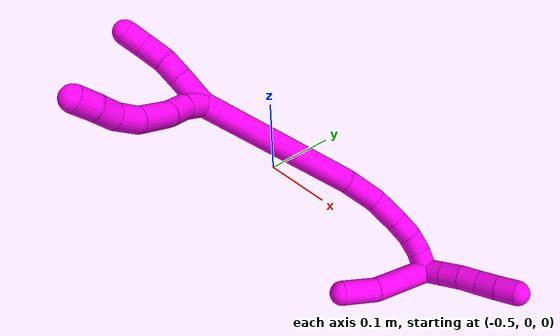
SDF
<sdf version="1.7">
 <world name="default">
  <model name="10">
   <static>0</static>
   <link name="10">
    <collision name="collision-cylinder-e_1_2_8">
     <pose>-0.000599 -0.003546 0.012645 0.273383 -0.045574 -0.00627</pose>
     <geometry><cylinder><radius>0.0125</radius><length>0.026292</length></cylinder></geometry>
     <surface>
      <friction><ode><mu>1.16</mu><mu2>1.16</mu2><slip1>0</slip1><slip2>0</slip2></ode></friction>
      <contact><ode><kp>1e+06</kp><kd>1</kd><max_vel>0</max_vel><min_depth>0.001</min_depth></ode></contact>
     </surface>
    </collision>
    <visual name="visual-cylinder-e_1_2_8">
     <pose>-0.000599 -0.003546 0.012645 0.273383 -0.045574 -0.00627</pose>
     <geometry><cylinder><radius>0.0125</radius><length>0.026292</length></cylinder></geometry>
     <material><ambient>1 0 0.964706 1</ambient></material>
    </visual>
    <collision name="collision-cylinder-e_2_8_9">
     <pose>0.000762 -0.010043 0.036707 0.252995 0.164712 0.020994</pose>
     <geometry><cylinder><radius>0.0125</radius><length>0.02391</length></cylinder></geometry>
     <surface>
      <friction><ode><mu>1.16</mu><mu2>1.16</mu2><slip1>0</slip1><slip2>0</slip2></ode></friction>
      <contact><ode><kp>1e+06</kp><kd>1</kd><max_vel>0</max_vel><min_depth>0.001</min_depth></ode></contact>
     </surface>
    </collision>
    <visual name="visual-cylinder-e_2_8_9">
     <pose>0.000762 -0.010043 0.036707 0.252995 0.164712 0.020994</pose>
     <geometry><cylinder><radius>0.0125</radius><length>0.02391</length></cylinder></geometry>
     <material><ambient>1 0 0.964706 1</ambient></material>
    </visual>
    <collision name="collision-cylinder-e_3_9_10">
     <pose>0.002357 -0.018362 0.065581 0.298293 -0.020002 -0.003006</pose>
     <geometry><cylinder><radius>0.0125</radius><length>0.036531</length></cylinder></geometry>
     <surface>
      <friction><ode><mu>1.16</mu><mu2>1.16</mu2><slip1>0</slip1><slip2>0</slip2></ode></friction>
      <contact><ode><kp>1e+06</kp><kd>1</kd><max_vel>0</max_vel><min_depth>0.001</min_depth></ode></contact>
     </surface>
    </collision>
    <visual name="visual-cylinder-e_3_9_10">
     <pose>0.002357 -0.018362 0.065581 0.298293 -0.020002 -0.003006</pose>
     <geometry><cylinder><radius>0.0125</radius><length>0.036531</length></cylinder></geometry>
     <material><ambient>1 0 0.964706 1</ambient></material>
    </visual>
    <collision name="collision-cylinder-e_4_10_11">
     <pose>-0.001873 -0.026833 0.093545 0.287195 -0.339109 -0.049498</pose>
     <geometry><cylinder><radius>0.0125</radius><length>0.023239</length></cylinder></geometry>
     <surface>
      <friction><ode><mu>1.16</mu><mu2>1.16</mu2><slip1>0</slip1><slip2>0</slip2></ode></friction>
      <contact><ode><kp>1e+06</kp><kd>1</kd><max_vel>0</max_vel><min_depth>0.001</min_depth></ode></contact>
     </surface>
    </collision>
    <visual name="visual-cylinder-e_4_10_11">
     <pose>-0.001873 -0.026833 0.093545 0.287195 -0.339109 -0.049498</pose>
     <geometry><cylinder><radius>0.0125</radius><length>0.023239</length></cylinder></geometry>
     <material><ambient>1 0 0.964706 1</ambient></material>
    </visual>
    <collision name="collision-cylinder-e_5_11_12">
     <pose>-0.010561 -0.030845 0.112774 0.103758 -0.502881 -0.026675</pose>
     <geometry><cylinder><radius>0.0125</radius><length>0.020012</length></cylinder></geometry>
     <surface>
      <friction><ode><mu>1.16</mu><mu2>1.16</mu2><slip1>0</slip1><slip2>0</slip2></ode></friction>
      <contact><ode><kp>1e+06</kp><kd>1</kd><max_vel>0</max_vel><min_depth>0.001</min_depth></ode></contact>
     </surface>
    </collision>
    <visual name="visual-cylinder-e_5_11_12">
     <pose>-0.010561 -0.030845 0.112774 0.103758 -0.502881 -0.026675</pose>
     <geometry><cylinder><radius>0.0125</radius><length>0.020012</length></cylinder></geometry>
     <material><ambient>1 0 0.964706 1</ambient></material>
    </visual>
    <collision name="collision-cylinder-e_6_12_6">
     <pose>-0.020531 -0.033815 0.129825 0.242592 -0.540288 -0.067483</pose>
     <geometry><cylinder><radius>0.0125</radius><length>0.020016</length></cylinder></geometry>
     <surface>
      <friction><ode><mu>1.16</mu><mu2>1.16</mu2><slip1>0</slip1><slip2>0</slip2></ode></friction>
      <contact><ode><kp>1e+06</kp><kd>1</kd><max_vel>0</max_vel><min_depth>0.001</min_depth></ode></contact>
     </surface>
    </collision>
    <visual name="visual-cylinder-e_6_12_6">
     <pose>-0.020531 -0.033815 0.129825 0.242592 -0.540288 -0.067483</pose>
     <geometry><cylinder><radius>0.0125</radius><length>0.020016</length></cylinder></geometry>
     <material><ambient>1 0 0.964706 1</ambient></material>
    </visual>
    <collision name="collision-cylinder-e_1_2_13">
     <pose>-0.016257 -0.003448 0.003626 0.760263 -1.27222 -0.573885</pose>
     <geometry><cylinder><radius>0.0125</radius><length>0.034018</length></cylinder></geometry>
     <surface>
      <friction><ode><mu>1.16</mu><mu2>1.16</mu2><slip1>0</slip1><slip2>0</slip2></ode></friction>
      <contact><ode><kp>1e+06</kp><kd>1</kd><max_vel>0</max_vel><min_depth>0.001</min_depth></ode></contact>
     </surface>
    </collision>
    <visual name="visual-cylinder-e_1_2_13">
     <pose>-0.016257 -0.003448 0.003626 0.760263 -1.27222 -0.573885</pose>
     <geometry><cylinder><radius>0.0125</radius><length>0.034018</length></cylinder></geometry>
     <material><ambient>1 0 0.964706 1</ambient></material>
    </visual>
    <collision name="collision-cylinder-e_2_13_14">
     <pose>-0.042782 -0.009326 0.009735 0.774511 -1.2445 -0.569229</pose>
     <geometry><cylinder><radius>0.0125</radius><length>0.021681</length></cylinder></geometry>
     <surface>
      <friction><ode><mu>1.16</mu><mu2>1.16</mu2><slip1>0</slip1><slip2>0</slip2></ode></friction>
      <contact><ode><kp>1e+06</kp><kd>1</kd><max_vel>0</max_vel><min_depth>0.001</min_depth></ode></contact>
     </surface>
    </collision>
    <visual name="visual-cylinder-e_2_13_14">
     <pose>-0.042782 -0.009326 0.009735 0.774511 -1.2445 -0.569229</pose>
     <geometry><cylinder><radius>0.0125</radius><length>0.021681</length></cylinder></geometry>
     <material><ambient>1 0 0.964706 1</ambient></material>
    </visual>
    <collision name="collision-cylinder-e_3_14_15">
     <pose>-0.063531 -0.016601 0.015671 0.951679 -1.05449 -0.582983</pose>
     <geometry><cylinder><radius>0.0125</radius><length>0.024102</length></cylinder></geometry>
     <surface>
      <friction><ode><mu>1.16</mu><mu2>1.16</mu2><slip1>0</slip1><slip2>0</slip2></ode></friction>
      <contact><ode><kp>1e+06</kp><kd>1</kd><max_vel>0</max_vel><min_depth>0.001</min_depth></ode></contact>
     </surface>
    </collision>
    <visual name="visual-cylinder-e_3_14_15">
     <pose>-0.063531 -0.016601 0.015671 0.951679 -1.05449 -0.582983</pose>
     <geometry><cylinder><radius>0.0125</radius><length>0.024102</length></cylinder></geometry>
     <material><ambient>1 0 0.964706 1</ambient></material>
    </visual>
    <collision name="collision-cylinder-e_4_15_5">
     <pose>-0.082396 -0.024978 0.023507 0.678169 -0.979599 -0.371737</pose>
     <geometry><cylinder><radius>0.0125</radius><length>0.020198</length></cylinder></geometry>
     <surface>
      <friction><ode><mu>1.16</mu><mu2>1.16</mu2><slip1>0</slip1><slip2>0</slip2></ode></friction>
      <contact><ode><kp>1e+06</kp><kd>1</kd><max_vel>0</max_vel><min_depth>0.001</min_depth></ode></contact>
     </surface>
    </collision>
    <visual name="visual-cylinder-e_4_15_5">
     <pose>-0.082396 -0.024978 0.023507 0.678169 -0.979599 -0.371737</pose>
     <geometry><cylinder><radius>0.0125</radius><length>0.020198</length></cylinder></geometry>
     <material><ambient>1 0 0.964706 1</ambient></material>
    </visual>
    <collision name="collision-cylinder-e_1_2_16">
     <pose>0.063866 0.03819 -0.036597 -2.33489 0.879091 -1.66766</pose>
     <geometry><cylinder><radius>0.0125</radius><length>0.165852</length></cylinder></geometry>
     <surface>
      <friction><ode><mu>1.16</mu><mu2>1.16</mu2><slip1>0</slip1><slip2>0</slip2></ode></friction>
      <contact><ode><kp>1e+06</kp><kd>1</kd><max_vel>0</max_vel><min_depth>0.001</min_depth></ode></contact>
     </surface>
    </collision>
    <visual name="visual-cylinder-e_1_2_16">
     <pose>0.063866 0.03819 -0.036597 -2.33489 0.879091 -1.66766</pose>
     <geometry><cylinder><radius>0.0125</radius><length>0.165852</length></cylinder></geometry>
     <material><ambient>1 0 0.964706 1</ambient></material>
    </visual>
    <collision name="collision-cylinder-e_2_16_17">
     <pose>0.143279 0.08273 -0.083557 -2.59188 0.907276 -2.09285</pose>
     <geometry><cylinder><radius>0.0125</radius><length>0.039467</length></cylinder></geometry>
     <surface>
      <friction><ode><mu>1.16</mu><mu2>1.16</mu2><slip1>0</slip1><slip2>0</slip2></ode></friction>
      <contact><ode><kp>1e+06</kp><kd>1</kd><max_vel>0</max_vel><min_depth>0.001</min_depth></ode></contact>
     </surface>
    </collision>
    <visual name="visual-cylinder-e_2_16_17">
     <pose>0.143279 0.08273 -0.083557 -2.59188 0.907276 -2.09285</pose>
     <geometry><cylinder><radius>0.0125</radius><length>0.039467</length></cylinder></geometry>
     <material><ambient>1 0 0.964706 1</ambient></material>
    </visual>
    <collision name="collision-cylinder-e_3_17_18">
     <pose>0.173628 0.093766 -0.097498 -2.22286 1.19177 -1.88113</pose>
     <geometry><cylinder><radius>0.0125</radius><length>0.031866</length></cylinder></geometry>
     <surface>
      <friction><ode><mu>1.16</mu><mu2>1.16</mu2><slip1>0</slip1><slip2>0</slip2></ode></friction>
      <contact><ode><kp>1e+06</kp><kd>1</kd><max_vel>0</max_vel><min_depth>0.001</min_depth></ode></contact>
     </surface>
    </collision>
    <visual name="visual-cylinder-e_3_17_18">
     <pose>0.173628 0.093766 -0.097498 -2.22286 1.19177 -1.88113</pose>
     <geometry><cylinder><radius>0.0125</radius><length>0.031866</length></cylinder></geometry>
     <material><ambient>1 0 0.964706 1</ambient></material>
    </visual>
    <collision name="collision-cylinder-e_4_18_19">
     <pose>0.198477 0.101058 -0.102718 -2.13343 1.27326 -1.85958</pose>
     <geometry><cylinder><radius>0.0125</radius><length>0.021017</length></cylinder></geometry>
     <surface>
      <friction><ode><mu>1.16</mu><mu2>1.16</mu2><slip1>0</slip1><slip2>0</slip2></ode></friction>
      <contact><ode><kp>1e+06</kp><kd>1</kd><max_vel>0</max_vel><min_depth>0.001</min_depth></ode></contact>
     </surface>
    </collision>
    <visual name="visual-cylinder-e_4_18_19">
     <pose>0.198477 0.101058 -0.102718 -2.13343 1.27326 -1.85958</pose>
     <geometry><cylinder><radius>0.0125</radius><length>0.021017</length></cylinder></geometry>
     <material><ambient>1 0 0.964706 1</ambient></material>
    </visual>
    <collision name="collision-cylinder-e_5_19_20">
     <pose>0.218496 0.104001 -0.10633 -2.97192 1.37316 -2.93482</pose>
     <geometry><cylinder><radius>0.0125</radius><length>0.02034</length></cylinder></geometry>
     <surface>
      <friction><ode><mu>1.16</mu><mu2>1.16</mu2><slip1>0</slip1><slip2>0</slip2></ode></friction>
      <contact><ode><kp>1e+06</kp><kd>1</kd><max_vel>0</max_vel><min_depth>0.001</min_depth></ode></contact>
     </surface>
    </collision>
    <visual name="visual-cylinder-e_5_19_20">
     <pose>0.218496 0.104001 -0.10633 -2.97192 1.37316 -2.93482</pose>
     <geometry><cylinder><radius>0.0125</radius><length>0.02034</length></cylinder></geometry>
     <material><ambient>1 0 0.964706 1</ambient></material>
    </visual>
    <collision name="collision-cylinder-e_6_20_1">
     <pose>0.239106 0.103618 -0.107103 0.5418 1.44038 0.478042</pose>
     <geometry><cylinder><radius>0.0125</radius><length>0.021458</length></cylinder></geometry>
     <surface>
      <friction><ode><mu>1.16</mu><mu2>1.16</mu2><slip1>0</slip1><slip2>0</slip2></ode></friction>
      <contact><ode><kp>1e+06</kp><kd>1</kd><max_vel>0</max_vel><min_depth>0.001</min_depth></ode></contact>
     </surface>
    </collision>
    <visual name="visual-cylinder-e_6_20_1">
     <pose>0.239106 0.103618 -0.107103 0.5418 1.44038 0.478042</pose>
     <geometry><cylinder><radius>0.0125</radius><length>0.021458</length></cylinder></geometry>
     <material><ambient>1 0 0.964706 1</ambient></material>
    </visual>
    <collision name="collision-cylinder-e_1_1_21">
     <pose>0.245728 0.080558 -0.084525 0.807314 -0.129137 -0.055219</pose>
     <geometry><cylinder><radius>0.0125</radius><length>0.062369</length></cylinder></geometry>
     <surface>
      <friction><ode><mu>1.16</mu><mu2>1.16</mu2><slip1>0</slip1><slip2>0</slip2></ode></friction>
      <contact><ode><kp>1e+06</kp><kd>1</kd><max_vel>0</max_vel><min_depth>0.001</min_depth></ode></contact>
     </surface>
    </collision>
    <visual name="visual-cylinder-e_1_1_21">
     <pose>0.245728 0.080558 -0.084525 0.807314 -0.129137 -0.055219</pose>
     <geometry><cylinder><radius>0.0125</radius><length>0.062369</length></cylinder></geometry>
     <material><ambient>1 0 0.964706 1</ambient></material>
    </visual>
    <collision name="collision-cylinder-e_2_21_4">
     <pose>0.234909 0.044824 -0.051811 0.868608 -0.369928 -0.173138</pose>
     <geometry><cylinder><radius>0.0125</radius><length>0.037631</length></cylinder></geometry>
     <surface>
      <friction><ode><mu>1.16</mu><mu2>1.16</mu2><slip1>0</slip1><slip2>0</slip2></ode></friction>
      <contact><ode><kp>1e+06</kp><kd>1</kd><max_vel>0</max_vel><min_depth>0.001</min_depth></ode></contact>
     </surface>
    </collision>
    <visual name="visual-cylinder-e_2_21_4">
     <pose>0.234909 0.044824 -0.051811 0.868608 -0.369928 -0.173138</pose>
     <geometry><cylinder><radius>0.0125</radius><length>0.037631</length></cylinder></geometry>
     <material><ambient>1 0 0.964706 1</ambient></material>
    </visual>
    <collision name="collision-cylinder-e_1_1_22">
     <pose>0.254191 0.11132 -0.102858 -1.22339 0.460857 -0.326189</pose>
     <geometry><cylinder><radius>0.0125</radius><length>0.02</length></cylinder></geometry>
     <surface>
      <friction><ode><mu>1.16</mu><mu2>1.16</mu2><slip1>0</slip1><slip2>0</slip2></ode></friction>
      <contact><ode><kp>1e+06</kp><kd>1</kd><max_vel>0</max_vel><min_depth>0.001</min_depth></ode></contact>
     </surface>
    </collision>
    <visual name="visual-cylinder-e_1_1_22">
     <pose>0.254191 0.11132 -0.102858 -1.22339 0.460857 -0.326189</pose>
     <geometry><cylinder><radius>0.0125</radius><length>0.02</length></cylinder></geometry>
     <material><ambient>1 0 0.964706 1</ambient></material>
    </visual>
    <collision name="collision-cylinder-e_2_22_23">
     <pose>0.263211 0.128137 -0.096875 -1.2346 0.47494 -0.340292</pose>
     <geometry><cylinder><radius>0.0125</radius><length>0.02</length></cylinder></geometry>
     <surface>
      <friction><ode><mu>1.16</mu><mu2>1.16</mu2><slip1>0</slip1><slip2>0</slip2></ode></friction>
      <contact><ode><kp>1e+06</kp><kd>1</kd><max_vel>0</max_vel><min_depth>0.001</min_depth></ode></contact>
     </surface>
    </collision>
    <visual name="visual-cylinder-e_2_22_23">
     <pose>0.263211 0.128137 -0.096875 -1.2346 0.47494 -0.340292</pose>
     <geometry><cylinder><radius>0.0125</radius><length>0.02</length></cylinder></geometry>
     <material><ambient>1 0 0.964706 1</ambient></material>
    </visual>
    <collision name="collision-cylinder-e_3_23_24">
     <pose>0.273165 0.144461 -0.091081 -1.22461 0.568228 -0.404584</pose>
     <geometry><cylinder><radius>0.0125</radius><length>0.02</length></cylinder></geometry>
     <surface>
      <friction><ode><mu>1.16</mu><mu2>1.16</mu2><slip1>0</slip1><slip2>0</slip2></ode></friction>
      <contact><ode><kp>1e+06</kp><kd>1</kd><max_vel>0</max_vel><min_depth>0.001</min_depth></ode></contact>
     </surface>
    </collision>
    <visual name="visual-cylinder-e_3_23_24">
     <pose>0.273165 0.144461 -0.091081 -1.22461 0.568228 -0.404584</pose>
     <geometry><cylinder><radius>0.0125</radius><length>0.02</length></cylinder></geometry>
     <material><ambient>1 0 0.964706 1</ambient></material>
    </visual>
    <collision name="collision-cylinder-e_4_24_25">
     <pose>0.283497 0.160317 -0.084665 -1.14915 0.517907 -0.339713</pose>
     <geometry><cylinder><radius>0.0125</radius><length>0.02</length></cylinder></geometry>
     <surface>
      <friction><ode><mu>1.16</mu><mu2>1.16</mu2><slip1>0</slip1><slip2>0</slip2></ode></friction>
      <contact><ode><kp>1e+06</kp><kd>1</kd><max_vel>0</max_vel><min_depth>0.001</min_depth></ode></contact>
     </surface>
    </collision>
    <visual name="visual-cylinder-e_4_24_25">
     <pose>0.283497 0.160317 -0.084665 -1.14915 0.517907 -0.339713</pose>
     <geometry><cylinder><radius>0.0125</radius><length>0.02</length></cylinder></geometry>
     <material><ambient>1 0 0.964706 1</ambient></material>
    </visual>
    <collision name="collision-cylinder-e_5_25_3">
     <pose>0.293486 0.176389 -0.078229 -1.23087 0.52801 -0.377693</pose>
     <geometry><cylinder><radius>0.0125</radius><length>0.02</length></cylinder></geometry>
     <surface>
      <friction><ode><mu>1.16</mu><mu2>1.16</mu2><slip1>0</slip1><slip2>0</slip2></ode></friction>
      <contact><ode><kp>1e+06</kp><kd>1</kd><max_vel>0</max_vel><min_depth>0.001</min_depth></ode></contact>
     </surface>
    </collision>
    <visual name="visual-cylinder-e_5_25_3">
     <pose>0.293486 0.176389 -0.078229 -1.23087 0.52801 -0.377693</pose>
     <geometry><cylinder><radius>0.0125</radius><length>0.02</length></cylinder></geometry>
     <material><ambient>1 0 0.964706 1</ambient></material>
    </visual>
    <collision name="collision-sphere-3">
     <pose>0.298524 0.184533 -0.075349 0 -0 0</pose>
     <geometry><sphere><radius>0.0125</radius></sphere></geometry>
     <surface>
      <friction><ode><mu>1.16</mu><mu2>1.16</mu2><slip1>0</slip1><slip2>0</slip2></ode></friction>
      <contact><ode><kp>1e+06</kp><kd>1</kd><max_vel>0</max_vel><min_depth>0.001</min_depth></ode></contact>
     </surface>
    </collision>
    <visual name="visual-sphere-3">
     <pose>0.298524 0.184533 -0.075349 0 -0 0</pose>
     <geometry><sphere><radius>0.0125</radius></sphere></geometry>
     <material><ambient>1 0 0.964706 1</ambient></material>
    </visual>
    <collision name="collision-sphere-25">
     <pose>0.288447 0.168245 -0.081109 0 -0 0</pose>
     <geometry><sphere><radius>0.0125</radius></sphere></geometry>
     <surface>
      <friction><ode><mu>1.16</mu><mu2>1.16</mu2><slip1>0</slip1><slip2>0</slip2></ode></friction>
      <contact><ode><kp>1e+06</kp><kd>1</kd><max_vel>0</max_vel><min_depth>0.001</min_depth></ode></contact>
     </surface>
    </collision>
    <visual name="visual-sphere-25">
     <pose>0.288447 0.168245 -0.081109 0 -0 0</pose>
     <geometry><sphere><radius>0.0125</radius></sphere></geometry>
     <material><ambient>1 0 0.964706 1</ambient></material>
    </visual>
    <collision name="collision-sphere-24">
     <pose>0.278546 0.15239 -0.088221 0 -0 0</pose>
     <geometry><sphere><radius>0.0125</radius></sphere></geometry>
     <surface>
      <friction><ode><mu>1.16</mu><mu2>1.16</mu2><slip1>0</slip1><slip2>0</slip2></ode></friction>
      <contact><ode><kp>1e+06</kp><kd>1</kd><max_vel>0</max_vel><min_depth>0.001</min_depth></ode></contact>
     </surface>
    </collision>
    <visual name="visual-sphere-24">
     <pose>0.278546 0.15239 -0.088221 0 -0 0</pose>
     <geometry><sphere><radius>0.0125</radius></sphere></geometry>
     <material><ambient>1 0 0.964706 1</ambient></material>
    </visual>
    <collision name="collision-sphere-23">
     <pose>0.267783 0.136533 -0.093941 0 -0 0</pose>
     <geometry><sphere><radius>0.0125</radius></sphere></geometry>
     <surface>
      <friction><ode><mu>1.16</mu><mu2>1.16</mu2><slip1>0</slip1><slip2>0</slip2></ode></friction>
      <contact><ode><kp>1e+06</kp><kd>1</kd><max_vel>0</max_vel><min_depth>0.001</min_depth></ode></contact>
     </surface>
    </collision>
    <visual name="visual-sphere-23">
     <pose>0.267783 0.136533 -0.093941 0 -0 0</pose>
     <geometry><sphere><radius>0.0125</radius></sphere></geometry>
     <material><ambient>1 0 0.964706 1</ambient></material>
    </visual>
    <collision name="collision-sphere-22">
     <pose>0.258638 0.119742 -0.099809 0 -0 0</pose>
     <geometry><sphere><radius>0.0125</radius></sphere></geometry>
     <surface>
      <friction><ode><mu>1.16</mu><mu2>1.16</mu2><slip1>0</slip1><slip2>0</slip2></ode></friction>
      <contact><ode><kp>1e+06</kp><kd>1</kd><max_vel>0</max_vel><min_depth>0.001</min_depth></ode></contact>
     </surface>
    </collision>
    <visual name="visual-sphere-22">
     <pose>0.258638 0.119742 -0.099809 0 -0 0</pose>
     <geometry><sphere><radius>0.0125</radius></sphere></geometry>
     <material><ambient>1 0 0.964706 1</ambient></material>
    </visual>
    <collision name="collision-sphere-4">
     <pose>0.228106 0.031431 -0.040481 0 -0 0</pose>
     <geometry><sphere><radius>0.0125</radius></sphere></geometry>
     <surface>
      <friction><ode><mu>1.16</mu><mu2>1.16</mu2><slip1>0</slip1><slip2>0</slip2></ode></friction>
      <contact><ode><kp>1e+06</kp><kd>1</kd><max_vel>0</max_vel><min_depth>0.001</min_depth></ode></contact>
     </surface>
    </collision>
    <visual name="visual-sphere-4">
     <pose>0.228106 0.031431 -0.040481 0 -0 0</pose>
     <geometry><sphere><radius>0.0125</radius></sphere></geometry>
     <material><ambient>1 0 0.964706 1</ambient></material>
    </visual>
    <collision name="collision-sphere-21">
     <pose>0.241712 0.058217 -0.063142 0 -0 0</pose>
     <geometry><sphere><radius>0.0125</radius></sphere></geometry>
     <surface>
      <friction><ode><mu>1.16</mu><mu2>1.16</mu2><slip1>0</slip1><slip2>0</slip2></ode></friction>
      <contact><ode><kp>1e+06</kp><kd>1</kd><max_vel>0</max_vel><min_depth>0.001</min_depth></ode></contact>
     </surface>
    </collision>
    <visual name="visual-sphere-21">
     <pose>0.241712 0.058217 -0.063142 0 -0 0</pose>
     <geometry><sphere><radius>0.0125</radius></sphere></geometry>
     <material><ambient>1 0 0.964706 1</ambient></material>
    </visual>
    <collision name="collision-sphere-1">
     <pose>0.249743 0.102899 -0.105907 0 -0 0</pose>
     <geometry><sphere><radius>0.0125</radius></sphere></geometry>
     <surface>
      <friction><ode><mu>1.16</mu><mu2>1.16</mu2><slip1>0</slip1><slip2>0</slip2></ode></friction>
      <contact><ode><kp>1e+06</kp><kd>1</kd><max_vel>0</max_vel><min_depth>0.001</min_depth></ode></contact>
     </surface>
    </collision>
    <visual name="visual-sphere-1">
     <pose>0.249743 0.102899 -0.105907 0 -0 0</pose>
     <geometry><sphere><radius>0.0125</radius></sphere></geometry>
     <material><ambient>1 0 0.964706 1</ambient></material>
    </visual>
    <collision name="collision-sphere-12">
     <pose>-0.015383 -0.031753 0.121494 0 -0 0</pose>
     <geometry><sphere><radius>0.0125</radius></sphere></geometry>
     <surface>
      <friction><ode><mu>1.16</mu><mu2>1.16</mu2><slip1>0</slip1><slip2>0</slip2></ode></friction>
      <contact><ode><kp>1e+06</kp><kd>1</kd><max_vel>0</max_vel><min_depth>0.001</min_depth></ode></contact>
     </surface>
    </collision>
    <visual name="visual-sphere-12">
     <pose>-0.015383 -0.031753 0.121494 0 -0 0</pose>
     <geometry><sphere><radius>0.0125</radius></sphere></geometry>
     <material><ambient>1 0 0.964706 1</ambient></material>
    </visual>
    <collision name="collision-sphere-11">
     <pose>-0.005738 -0.029937 0.104054 0 -0 0</pose>
     <geometry><sphere><radius>0.0125</radius></sphere></geometry>
     <surface>
      <friction><ode><mu>1.16</mu><mu2>1.16</mu2><slip1>0</slip1><slip2>0</slip2></ode></friction>
      <contact><ode><kp>1e+06</kp><kd>1</kd><max_vel>0</max_vel><min_depth>0.001</min_depth></ode></contact>
     </surface>
    </collision>
    <visual name="visual-sphere-11">
     <pose>-0.005738 -0.029937 0.104054 0 -0 0</pose>
     <geometry><sphere><radius>0.0125</radius></sphere></geometry>
     <material><ambient>1 0 0.964706 1</ambient></material>
    </visual>
    <collision name="collision-sphere-10">
     <pose>0.001992 -0.023729 0.083036 0 -0 0</pose>
     <geometry><sphere><radius>0.0125</radius></sphere></geometry>
     <surface>
      <friction><ode><mu>1.16</mu><mu2>1.16</mu2><slip1>0</slip1><slip2>0</slip2></ode></friction>
      <contact><ode><kp>1e+06</kp><kd>1</kd><max_vel>0</max_vel><min_depth>0.001</min_depth></ode></contact>
     </surface>
    </collision>
    <visual name="visual-sphere-10">
     <pose>0.001992 -0.023729 0.083036 0 -0 0</pose>
     <geometry><sphere><radius>0.0125</radius></sphere></geometry>
     <material><ambient>1 0 0.964706 1</ambient></material>
    </visual>
    <collision name="collision-sphere-9">
     <pose>0.002723 -0.012995 0.048125 0 -0 0</pose>
     <geometry><sphere><radius>0.0125</radius></sphere></geometry>
     <surface>
      <friction><ode><mu>1.16</mu><mu2>1.16</mu2><slip1>0</slip1><slip2>0</slip2></ode></friction>
      <contact><ode><kp>1e+06</kp><kd>1</kd><max_vel>0</max_vel><min_depth>0.001</min_depth></ode></contact>
     </surface>
    </collision>
    <visual name="visual-sphere-9">
     <pose>0.002723 -0.012995 0.048125 0 -0 0</pose>
     <geometry><sphere><radius>0.0125</radius></sphere></geometry>
     <material><ambient>1 0 0.964706 1</ambient></material>
    </visual>
    <collision name="collision-sphere-2">
     <geometry><sphere><radius>0.0125</radius></sphere></geometry>
     <surface>
      <friction><ode><mu>1.16</mu><mu2>1.16</mu2><slip1>0</slip1><slip2>0</slip2></ode></friction>
      <contact><ode><kp>1e+06</kp><kd>1</kd><max_vel>0</max_vel><min_depth>0.001</min_depth></ode></contact>
     </surface>
    </collision>
    <visual name="visual-sphere-2">
     <geometry><sphere><radius>0.0125</radius></sphere></geometry>
     <material><ambient>1 0 0.964706 1</ambient></material>
    </visual>
    <collision name="collision-sphere-19">
     <pose>0.208524 0.103663 -0.104362 0 -0 0</pose>
     <geometry><sphere><radius>0.0125</radius></sphere></geometry>
     <surface>
      <friction><ode><mu>1.16</mu><mu2>1.16</mu2><slip1>0</slip1><slip2>0</slip2></ode></friction>
      <contact><ode><kp>1e+06</kp><kd>1</kd><max_vel>0</max_vel><min_depth>0.001</min_depth></ode></contact>
     </surface>
    </collision>
    <visual name="visual-sphere-19">
     <pose>0.208524 0.103663 -0.104362 0 -0 0</pose>
     <geometry><sphere><radius>0.0125</radius></sphere></geometry>
     <material><ambient>1 0 0.964706 1</ambient></material>
    </visual>
    <collision name="collision-sphere-8">
     <pose>-0.001198 -0.007091 0.025289 0 -0 0</pose>
     <geometry><sphere><radius>0.0125</radius></sphere></geometry>
     <surface>
      <friction><ode><mu>1.16</mu><mu2>1.16</mu2><slip1>0</slip1><slip2>0</slip2></ode></friction>
      <contact><ode><kp>1e+06</kp><kd>1</kd><max_vel>0</max_vel><min_depth>0.001</min_depth></ode></contact>
     </surface>
    </collision>
    <visual name="visual-sphere-8">
     <pose>-0.001198 -0.007091 0.025289 0 -0 0</pose>
     <geometry><sphere><radius>0.0125</radius></sphere></geometry>
     <material><ambient>1 0 0.964706 1</ambient></material>
    </visual>
    <collision name="collision-sphere-6">
     <pose>-0.025679 -0.035876 0.138156 0 -0 0</pose>
     <geometry><sphere><radius>0.0125</radius></sphere></geometry>
     <surface>
      <friction><ode><mu>1.16</mu><mu2>1.16</mu2><slip1>0</slip1><slip2>0</slip2></ode></friction>
      <contact><ode><kp>1e+06</kp><kd>1</kd><max_vel>0</max_vel><min_depth>0.001</min_depth></ode></contact>
     </surface>
    </collision>
    <visual name="visual-sphere-6">
     <pose>-0.025679 -0.035876 0.138156 0 -0 0</pose>
     <geometry><sphere><radius>0.0125</radius></sphere></geometry>
     <material><ambient>1 0 0.964706 1</ambient></material>
    </visual>
    <collision name="collision-sphere-13">
     <pose>-0.032513 -0.006896 0.007251 0 -0 0</pose>
     <geometry><sphere><radius>0.0125</radius></sphere></geometry>
     <surface>
      <friction><ode><mu>1.16</mu><mu2>1.16</mu2><slip1>0</slip1><slip2>0</slip2></ode></friction>
      <contact><ode><kp>1e+06</kp><kd>1</kd><max_vel>0</max_vel><min_depth>0.001</min_depth></ode></contact>
     </surface>
    </collision>
    <visual name="visual-sphere-13">
     <pose>-0.032513 -0.006896 0.007251 0 -0 0</pose>
     <geometry><sphere><radius>0.0125</radius></sphere></geometry>
     <material><ambient>1 0 0.964706 1</ambient></material>
    </visual>
    <collision name="collision-sphere-14">
     <pose>-0.053051 -0.011756 0.012219 0 -0 0</pose>
     <geometry><sphere><radius>0.0125</radius></sphere></geometry>
     <surface>
      <friction><ode><mu>1.16</mu><mu2>1.16</mu2><slip1>0</slip1><slip2>0</slip2></ode></friction>
      <contact><ode><kp>1e+06</kp><kd>1</kd><max_vel>0</max_vel><min_depth>0.001</min_depth></ode></contact>
     </surface>
    </collision>
    <visual name="visual-sphere-14">
     <pose>-0.053051 -0.011756 0.012219 0 -0 0</pose>
     <geometry><sphere><radius>0.0125</radius></sphere></geometry>
     <material><ambient>1 0 0.964706 1</ambient></material>
    </visual>
    <collision name="collision-sphere-15">
     <pose>-0.074011 -0.021446 0.019124 0 -0 0</pose>
     <geometry><sphere><radius>0.0125</radius></sphere></geometry>
     <surface>
      <friction><ode><mu>1.16</mu><mu2>1.16</mu2><slip1>0</slip1><slip2>0</slip2></ode></friction>
      <contact><ode><kp>1e+06</kp><kd>1</kd><max_vel>0</max_vel><min_depth>0.001</min_depth></ode></contact>
     </surface>
    </collision>
    <visual name="visual-sphere-15">
     <pose>-0.074011 -0.021446 0.019124 0 -0 0</pose>
     <geometry><sphere><radius>0.0125</radius></sphere></geometry>
     <material><ambient>1 0 0.964706 1</ambient></material>
    </visual>
    <collision name="collision-sphere-5">
     <pose>-0.090781 -0.028509 0.02789 0 -0 0</pose>
     <geometry><sphere><radius>0.0125</radius></sphere></geometry>
     <surface>
      <friction><ode><mu>1.16</mu><mu2>1.16</mu2><slip1>0</slip1><slip2>0</slip2></ode></friction>
      <contact><ode><kp>1e+06</kp><kd>1</kd><max_vel>0</max_vel><min_depth>0.001</min_depth></ode></contact>
     </surface>
    </collision>
    <visual name="visual-sphere-5">
     <pose>-0.090781 -0.028509 0.02789 0 -0 0</pose>
     <geometry><sphere><radius>0.0125</radius></sphere></geometry>
     <material><ambient>1 0 0.964706 1</ambient></material>
    </visual>
    <collision name="collision-sphere-16">
     <pose>0.127732 0.076381 -0.073193 0 -0 0</pose>
     <geometry><sphere><radius>0.0125</radius></sphere></geometry>
     <surface>
      <friction><ode><mu>1.16</mu><mu2>1.16</mu2><slip1>0</slip1><slip2>0</slip2></ode></friction>
      <contact><ode><kp>1e+06</kp><kd>1</kd><max_vel>0</max_vel><min_depth>0.001</min_depth></ode></contact>
     </surface>
    </collision>
    <visual name="visual-sphere-16">
     <pose>0.127732 0.076381 -0.073193 0 -0 0</pose>
     <geometry><sphere><radius>0.0125</radius></sphere></geometry>
     <material><ambient>1 0 0.964706 1</ambient></material>
    </visual>
    <collision name="collision-sphere-17">
     <pose>0.158826 0.08908 -0.09392 0 -0 0</pose>
     <geometry><sphere><radius>0.0125</radius></sphere></geometry>
     <surface>
      <friction><ode><mu>1.16</mu><mu2>1.16</mu2><slip1>0</slip1><slip2>0</slip2></ode></friction>
      <contact><ode><kp>1e+06</kp><kd>1</kd><max_vel>0</max_vel><min_depth>0.001</min_depth></ode></contact>
     </surface>
    </collision>
    <visual name="visual-sphere-17">
     <pose>0.158826 0.08908 -0.09392 0 -0 0</pose>
     <geometry><sphere><radius>0.0125</radius></sphere></geometry>
     <material><ambient>1 0 0.964706 1</ambient></material>
    </visual>
    <collision name="collision-sphere-18">
     <pose>0.18843 0.098452 -0.101075 0 -0 0</pose>
     <geometry><sphere><radius>0.0125</radius></sphere></geometry>
     <surface>
      <friction><ode><mu>1.16</mu><mu2>1.16</mu2><slip1>0</slip1><slip2>0</slip2></ode></friction>
      <contact><ode><kp>1e+06</kp><kd>1</kd><max_vel>0</max_vel><min_depth>0.001</min_depth></ode></contact>
     </surface>
    </collision>
    <visual name="visual-sphere-18">
     <pose>0.18843 0.098452 -0.101075 0 -0 0</pose>
     <geometry><sphere><radius>0.0125</radius></sphere></geometry>
     <material><ambient>1 0 0.964706 1</ambient></material>
    </visual>
    <collision name="collision-sphere-20">
     <pose>0.228468 0.104338 -0.108298 0 -0 0</pose>
     <geometry><sphere><radius>0.0125</radius></sphere></geometry>
     <surface>
      <friction><ode><mu>1.16</mu><mu2>1.16</mu2><slip1>0</slip1><slip2>0</slip2></ode></friction>
      <contact><ode><kp>1e+06</kp><kd>1</kd><max_vel>0</max_vel><min_depth>0.001</min_depth></ode></contact>
     </surface>
    </collision>
    <visual name="visual-sphere-20">
     <pose>0.228468 0.104338 -0.108298 0 -0 0</pose>
     <geometry><sphere><radius>0.0125</radius></sphere></geometry>
     <material><ambient>1 0 0.964706 1</ambient></material>
    </visual>
    <inertial>
     <pose>0.109053 0.048037 -0.031423 0 -0 0</pose>
     <mass>0.75</mass>
     <inertia>
      <ixx>-0.00022</ixx>
      <ixy>0</ixy>
      <ixz>0</ixz>
      <iyy>4.7e-05</iyy>
      <iyz>0</iyz>
      <izz>-0.000447</izz>
     </inertia>
    </inertial>
   </link>
   <pose>-0.395763 -0.164972 0.212596 0.845941 0.790355 -0.092244</pose>
  </model>
 </world>
</sdf>
